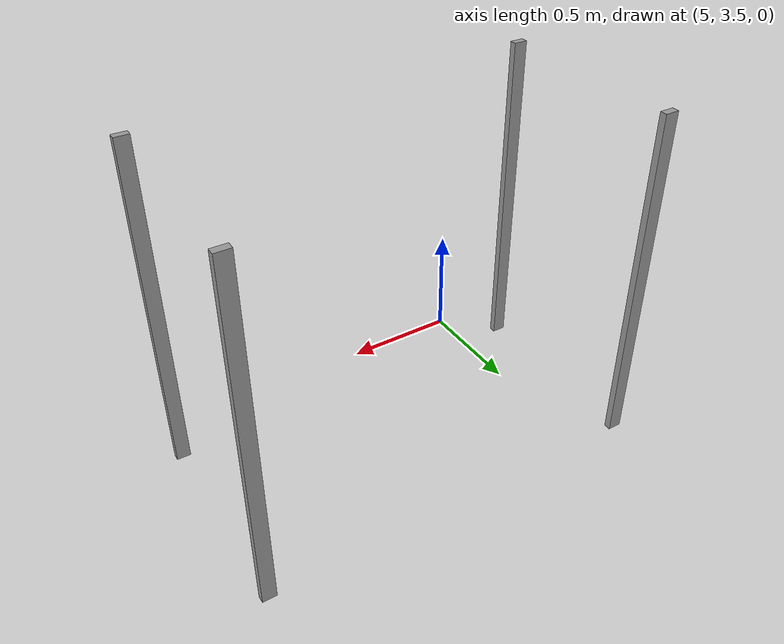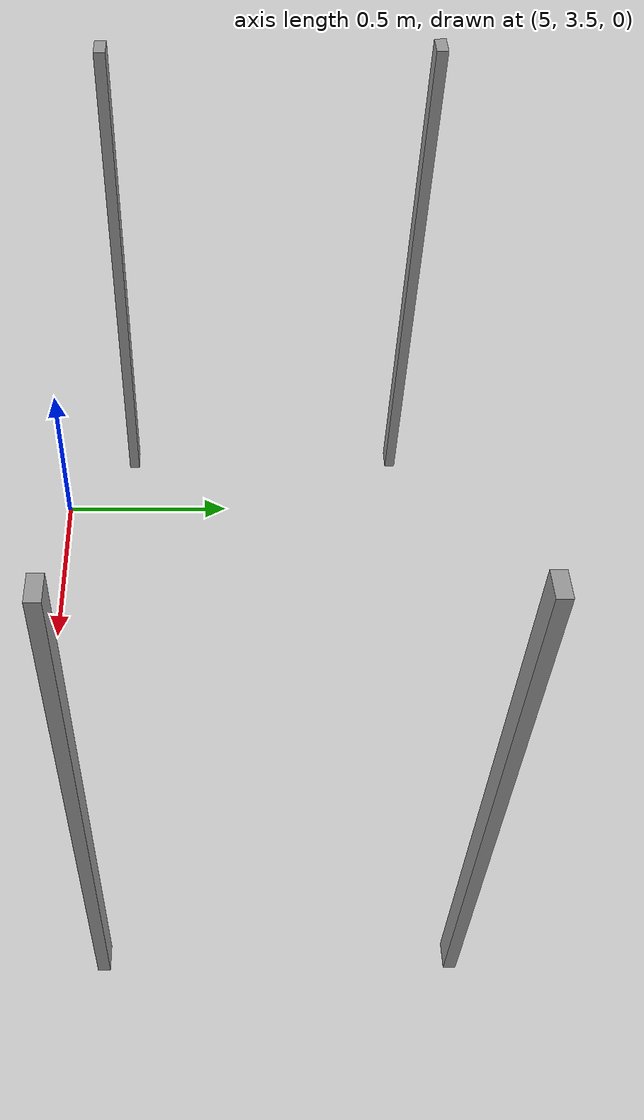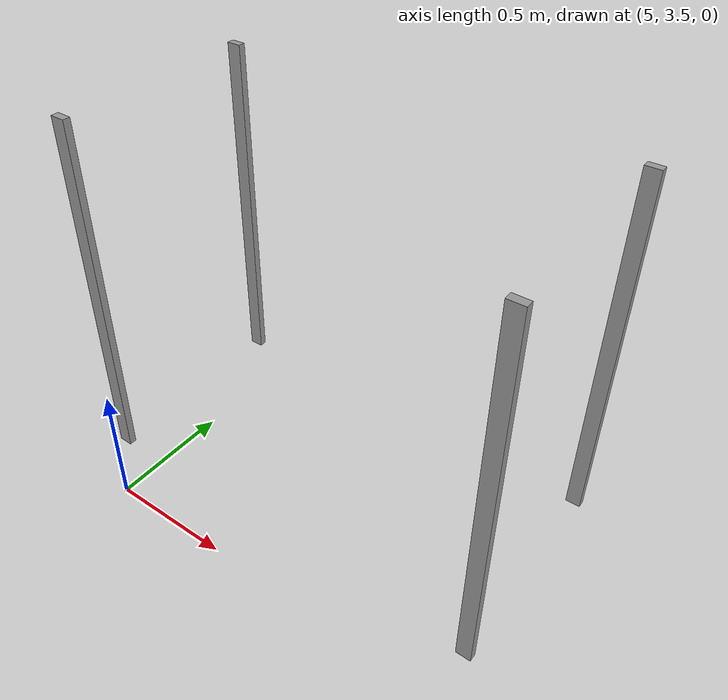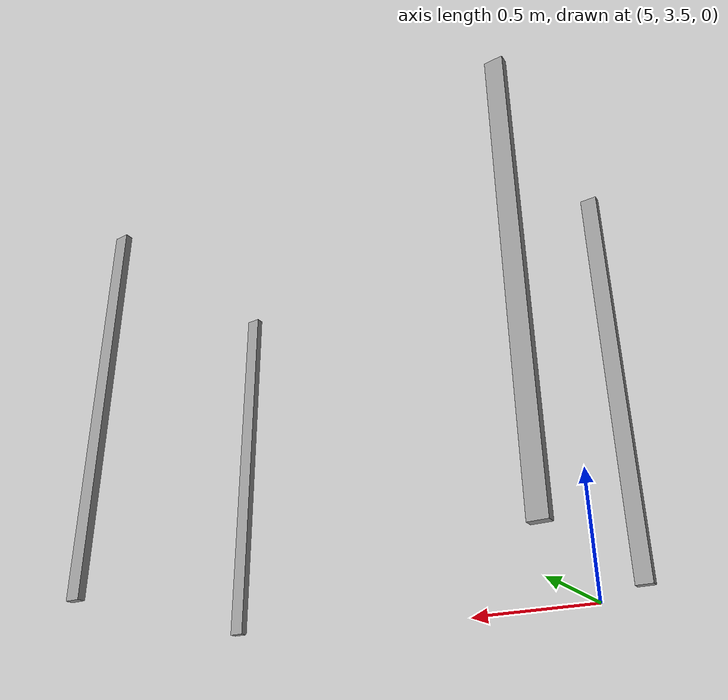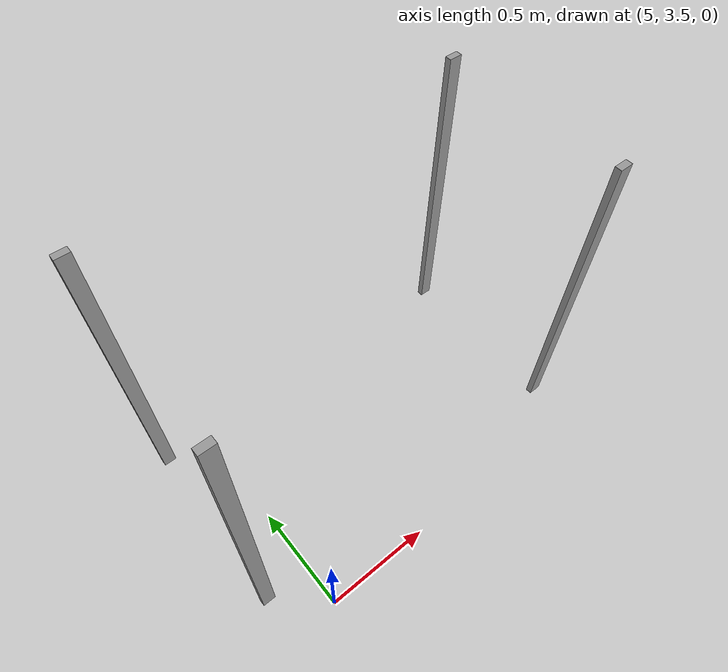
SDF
<?xml version='1.0'?>
<sdf version='1.6'>
  <model name='room6'>
    <pose frame=''>5.633 4.125 0 0 -0 0</pose>
    <link name='Wall_12'>
      <collision name='Wall_12_Collision'>
        <geometry>
          <box>
            <size>0.06 0.03 1.5</size>
          </box>
        </geometry>
        <pose frame=''>0 0 0.75 0 -0 0</pose>
      </collision>
      <visual name='Wall_12_Visual'>
        <pose frame=''>0 0 0.75 0 -0 0</pose>
        <geometry>
          <box>
            <size>0.06 0.03 1.5</size>
          </box>
        </geometry>
        <material>
          <script>
            <uri>file://media/materials/scripts/gazebo.material</uri>
            <name>Gazebo/Grey</name>
          </script>
          <ambient>1 1 1 1</ambient>
        </material>
        <meta>
          <layer>0</layer>
        </meta>
      </visual>
      <pose frame=''>0.848 -0.425 0 0 -0 0</pose>
    </link>
    <link name='Wall_14'>
      <collision name='Wall_14_Collision'>
        <geometry>
          <box>
            <size>0.06 0.03 1.5</size>
          </box>
        </geometry>
        <pose frame=''>0 0 0.75 0 -0 0</pose>
      </collision>
      <visual name='Wall_14_Visual'>
        <pose frame=''>0 0 0.75 0 -0 0</pose>
        <geometry>
          <box>
            <size>0.06 0.03 1.5</size>
          </box>
        </geometry>
        <material>
          <script>
            <uri>file://media/materials/scripts/gazebo.material</uri>
            <name>Gazebo/Grey</name>
          </script>
          <ambient>1 1 1 1</ambient>
        </material>
        <meta>
          <layer>0</layer>
        </meta>
      </visual>
      <pose frame=''>-0.848 -0.425 0 0 -0 3.14159</pose>
    </link>
    <link name='Wall_16'>
      <collision name='Wall_16_Collision'>
        <geometry>
          <box>
            <size>0.06 0.03 1.5</size>
          </box>
        </geometry>
        <pose frame=''>0 0 0.75 0 -0 0</pose>
      </collision>
      <visual name='Wall_16_Visual'>
        <pose frame=''>0 0 0.75 0 -0 0</pose>
        <geometry>
          <box>
            <size>0.06 0.03 1.5</size>
          </box>
        </geometry>
        <material>
          <script>
            <uri>file://media/materials/scripts/gazebo.material</uri>
            <name>Gazebo/Grey</name>
          </script>
          <ambient>1 1 1 1</ambient>
        </material>
        <meta>
          <layer>0</layer>
        </meta>
      </visual>
      <pose frame=''>-0.848 0.425 0 0 -0 3.14159</pose>
    </link>
    <link name='Wall_18'>
      <collision name='Wall_18_Collision'>
        <geometry>
          <box>
            <size>0.06 0.03 1.5</size>
          </box>
        </geometry>
        <pose frame=''>0 0 0.75 0 -0 0</pose>
      </collision>
      <visual name='Wall_18_Visual'>
        <pose frame=''>0 0 0.75 0 -0 0</pose>
        <geometry>
          <box>
            <size>0.06 0.03 1.5</size>
          </box>
        </geometry>
        <material>
          <script>
            <uri>file://media/materials/scripts/gazebo.material</uri>
            <name>Gazebo/Grey</name>
          </script>
          <ambient>1 1 1 1</ambient>
        </material>
        <meta>
          <layer>0</layer>
        </meta>
      </visual>
      <pose frame=''>0.848 0.425 0 0 -0 0</pose>
    </link>
    <static>1</static>
  </model>
</sdf>
